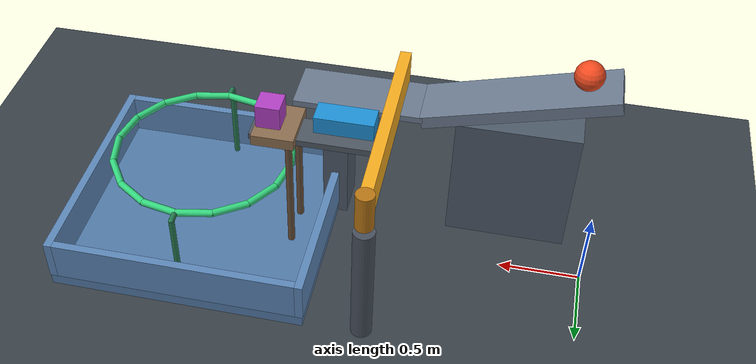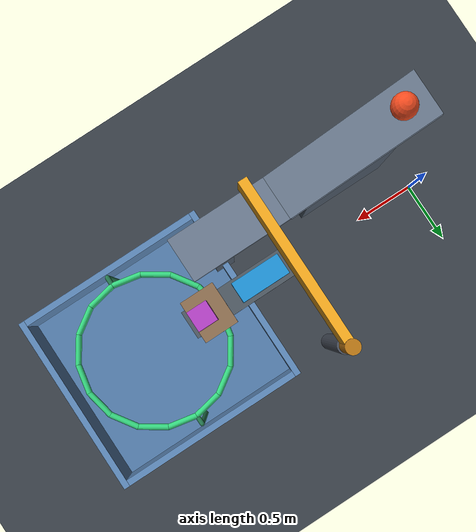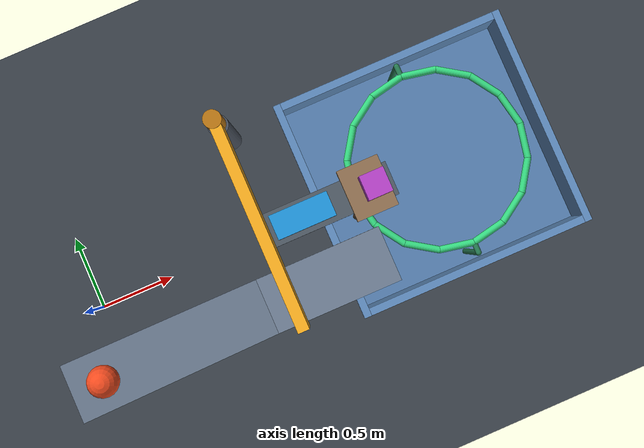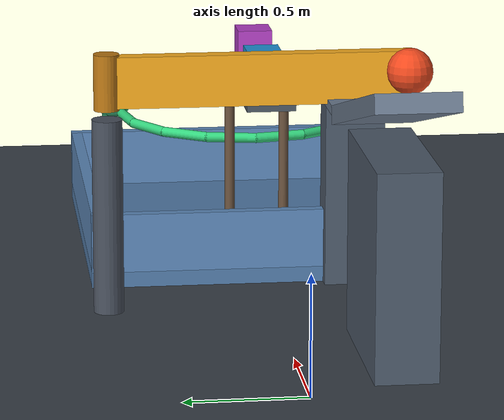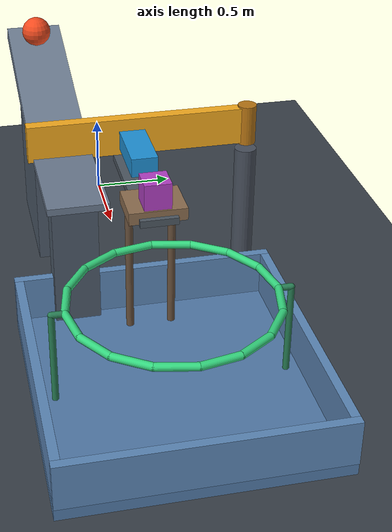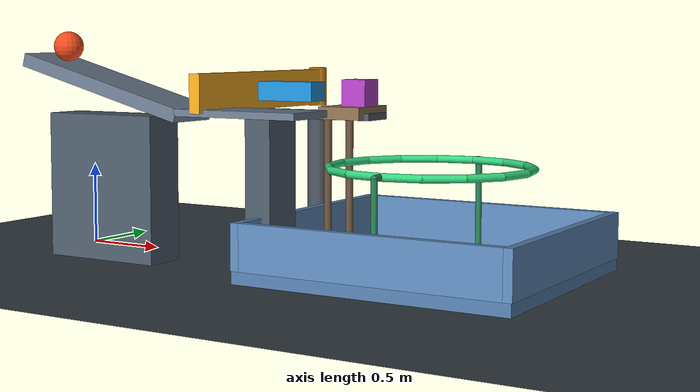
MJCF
<mujoco model="ball_paddle_slider_drop">
  <compiler angle="degree" inertiafromgeom="true"/>
  <option timestep="0.002" gravity="0 0 -9.81" integrator="implicitfast" cone="elliptic" iterations="80"/>
  <size njmax="300" nconmax="150"/>

  <visual>
    <headlight ambient="0.45 0.45 0.45" diffuse="0.7 0.7 0.7" specular="0.2 0.2 0.2"/>
    <map znear="0.01" zfar="20"/>
  </visual>

  <worldbody>
    <light name="overhead" pos="1.4 -2 5" dir="0.1 0.3 -1"/>
    <camera name="overview" pos="4 -5 3.4" xyaxes="0.86 0.51 0 -0.23 0.39 0.89"/>

    <geom name="floor" type="plane" size="6 6 0.1" friction="0.8 0.01 0.025" condim="6" rgba="0.22 0.25 0.28 1"/>

    <!-- The ball starts exactly one metre uphill along the ramp surface. -->
    <body name="ramp">
      <geom name="ramp_slope" type="box" pos="0.519774 -0.4 1.024066" quat="0.991444861 0 0.130526192 0" size="0.59 0.17 0.04" friction="0.7 0.005 0.0005" condim="6" rgba="0.42 0.48 0.56 1"/>
      <geom name="ramp_apron" type="box" pos="1.48 -0.4 0.89" size="0.40 0.17 0.02" friction="0.7 0.005 0.0005" condim="6" rgba="0.42 0.48 0.56 1"/>
      <geom name="ramp_support" type="box" pos="0.50 -0.4 0.43" size="0.38 0.13 0.43" rgba="0.30 0.35 0.41 1"/>
      <geom name="ramp_apron_support" type="box" pos="1.62 -0.4 0.435" size="0.08 0.13 0.435" rgba="0.30 0.35 0.41 1"/>
    </body>

    <body name="ball" pos="0.157368 -0.4 1.255752">
      <freejoint name="ball_free"/>
      <geom name="ball_sphere" type="sphere" size="0.09" mass="0.8" friction="0.7 0.005 0.0005" condim="6" solref="0.008 1" rgba="0.94 0.29 0.12 1"/>
    </body>

    <geom name="paddle_pedestal" type="cylinder" pos="1.25 0.70 0.42" size="0.065 0.42" rgba="0.28 0.31 0.36 1"/>

    <!-- Positive hinge rotation sweeps the arm toward positive x. -->
    <body name="paddle" pos="1.25 0.70 1.0">
      <joint name="paddle_hinge" type="hinge" axis="0 0 1" limited="true" range="0 70" damping="0.08" frictionloss="0.02" armature="0.002"/>
      <geom name="paddle_arm" type="box" pos="0 -0.65 0" size="0.035 0.65 0.11" mass="0.24" friction="0.25 0.005 0.0001" solref="0.008 1" rgba="0.96 0.67 0.12 1"/>
      <geom name="paddle_hub" type="cylinder" size="0.055 0.12" mass="0.025" rgba="0.72 0.46 0.08 1"/>
    </body>

    <geom name="slider_guide_base" type="box" pos="1.67 0 0.87" size="0.40 0.105 0.02" rgba="0.30 0.34 0.38 1"/>

    <body name="slider" pos="1.50 0 1.0">
      <joint name="slider_slide" type="slide" axis="1 0 0" limited="true" range="0 0.45" damping="0.8" frictionloss="0.04" armature="0.005" solreflimit="0.006 1"/>
      <geom name="slider_striker" type="box" size="0.18 0.075 0.055" mass="0.20" friction="0.25 0.005 0.0001" solref="0.008 1" rgba="0.12 0.57 0.84 1"/>
    </body>

    <body name="ledge">
      <geom name="ledge_top" type="box" pos="1.91 0 0.89" size="0.13 0.16 0.035" friction="0.18 0.005 0.0001" rgba="0.55 0.43 0.31 1"/>
      <geom name="ledge_leg_left" type="cylinder" pos="1.82 -0.12 0.4275" size="0.022 0.4275" rgba="0.40 0.31 0.23 1"/>
      <geom name="ledge_leg_right" type="cylinder" pos="1.82 0.12 0.4275" size="0.022 0.4275" rgba="0.40 0.31 0.23 1"/>
    </body>

    <body name="block" pos="1.955 0 1.0">
      <freejoint name="block_free"/>
      <geom name="block_payload" type="box" size="0.075 0.075 0.075" mass="0.075" friction="0.35 0.01 0.001" condim="6" solref="0.008 1" rgba="0.70 0.25 0.77 1"/>
    </body>

    <!-- A horizontal, sixteen-segment circular hoop with a generous aperture. -->
    <body name="hoop">
      <geom name="hoop_segment_01" type="capsule" fromto="2.960000 0.000000 0.60 2.917373 0.214303 0.60" size="0.022" rgba="0.20 0.83 0.49 1"/>
      <geom name="hoop_segment_02" type="capsule" fromto="2.917373 0.214303 0.60 2.795980 0.395980 0.60" size="0.022" rgba="0.20 0.83 0.49 1"/>
      <geom name="hoop_segment_03" type="capsule" fromto="2.795980 0.395980 0.60 2.614303 0.517373 0.60" size="0.022" rgba="0.20 0.83 0.49 1"/>
      <geom name="hoop_segment_04" type="capsule" fromto="2.614303 0.517373 0.60 2.400000 0.560000 0.60" size="0.022" rgba="0.20 0.83 0.49 1"/>
      <geom name="hoop_segment_05" type="capsule" fromto="2.400000 0.560000 0.60 2.185697 0.517373 0.60" size="0.022" rgba="0.20 0.83 0.49 1"/>
      <geom name="hoop_segment_06" type="capsule" fromto="2.185697 0.517373 0.60 2.004020 0.395980 0.60" size="0.022" rgba="0.20 0.83 0.49 1"/>
      <geom name="hoop_segment_07" type="capsule" fromto="2.004020 0.395980 0.60 1.882627 0.214303 0.60" size="0.022" rgba="0.20 0.83 0.49 1"/>
      <geom name="hoop_segment_08" type="capsule" fromto="1.882627 0.214303 0.60 1.840000 0.000000 0.60" size="0.022" rgba="0.20 0.83 0.49 1"/>
      <geom name="hoop_segment_09" type="capsule" fromto="1.840000 0.000000 0.60 1.882627 -0.214303 0.60" size="0.022" rgba="0.20 0.83 0.49 1"/>
      <geom name="hoop_segment_10" type="capsule" fromto="1.882627 -0.214303 0.60 2.004020 -0.395980 0.60" size="0.022" rgba="0.20 0.83 0.49 1"/>
      <geom name="hoop_segment_11" type="capsule" fromto="2.004020 -0.395980 0.60 2.185697 -0.517373 0.60" size="0.022" rgba="0.20 0.83 0.49 1"/>
      <geom name="hoop_segment_12" type="capsule" fromto="2.185697 -0.517373 0.60 2.400000 -0.560000 0.60" size="0.022" rgba="0.20 0.83 0.49 1"/>
      <geom name="hoop_segment_13" type="capsule" fromto="2.400000 -0.560000 0.60 2.614303 -0.517373 0.60" size="0.022" rgba="0.20 0.83 0.49 1"/>
      <geom name="hoop_segment_14" type="capsule" fromto="2.614303 -0.517373 0.60 2.795980 -0.395980 0.60" size="0.022" rgba="0.20 0.83 0.49 1"/>
      <geom name="hoop_segment_15" type="capsule" fromto="2.795980 -0.395980 0.60 2.917373 -0.214303 0.60" size="0.022" rgba="0.20 0.83 0.49 1"/>
      <geom name="hoop_segment_16" type="capsule" fromto="2.917373 -0.214303 0.60 2.960000 0.000000 0.60" size="0.022" rgba="0.20 0.83 0.49 1"/>
      <geom name="hoop_post_left" type="cylinder" pos="2.4 -0.63 0.30" size="0.018 0.30" rgba="0.15 0.48 0.32 1"/>
      <geom name="hoop_post_right" type="cylinder" pos="2.4 0.63 0.30" size="0.018 0.30" rgba="0.15 0.48 0.32 1"/>
      <geom name="hoop_bracket_left" type="capsule" fromto="2.4 -0.63 0.60 2.4 -0.56 0.60" size="0.018" rgba="0.15 0.48 0.32 1"/>
      <geom name="hoop_bracket_right" type="capsule" fromto="2.4 0.63 0.60 2.4 0.56 0.60" size="0.018" rgba="0.15 0.48 0.32 1"/>
    </body>

    <body name="box">
      <geom name="box_bottom" type="box" pos="2.4 0 0.035" size="0.80 0.75 0.035" friction="0.8 0.01 0.025" condim="6" solref="0.012 1" rgba="0.32 0.48 0.66 1"/>
      <geom name="box_wall_back" type="box" pos="1.62 0 0.20" size="0.025 0.75 0.13" friction="0.8 0.01 0.025" condim="6" rgba="0.36 0.53 0.72 1"/>
      <geom name="box_wall_front" type="box" pos="3.18 0 0.20" size="0.025 0.75 0.13" friction="0.8 0.01 0.025" condim="6" rgba="0.36 0.53 0.72 1"/>
      <geom name="box_wall_left" type="box" pos="2.4 -0.725 0.20" size="0.755 0.025 0.13" friction="0.8 0.01 0.025" condim="6" rgba="0.36 0.53 0.72 1"/>
      <geom name="box_wall_right" type="box" pos="2.4 0.725 0.20" size="0.755 0.025 0.13" friction="0.8 0.01 0.025" condim="6" rgba="0.36 0.53 0.72 1"/>
    </body>
  </worldbody>

  <keyframe>
    <key name="start" qpos="0.157368 -0.4 1.255752 1 0 0 0 0 0 1.955 0 1.0 1 0 0 0" qvel="0 0 0 0 0 0 0 0 0 0 0 0 0 0"/>
  </keyframe>
</mujoco>
